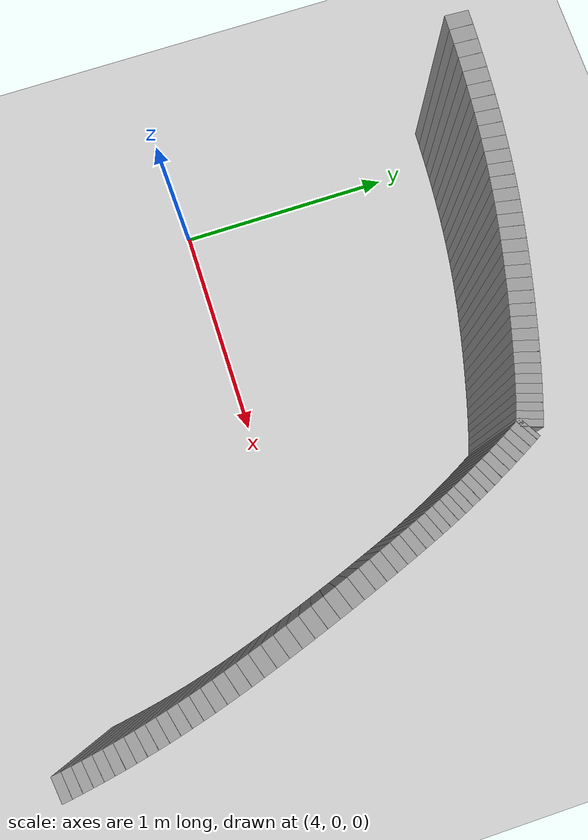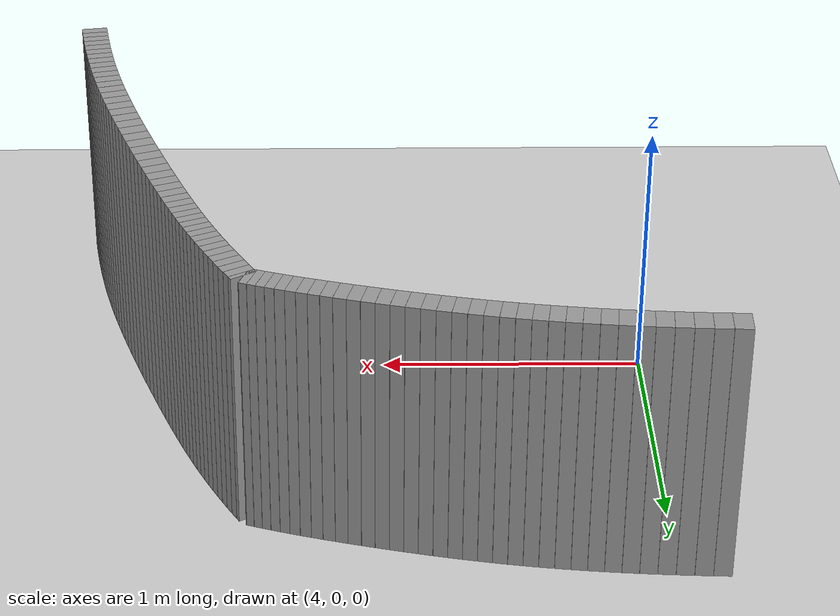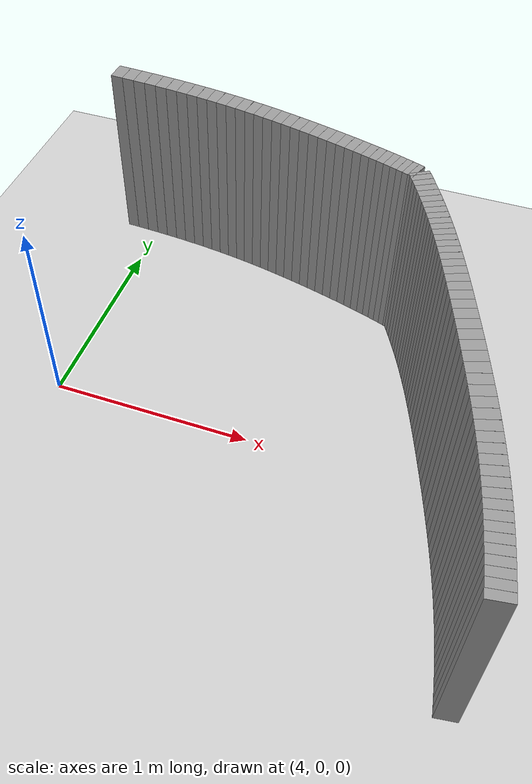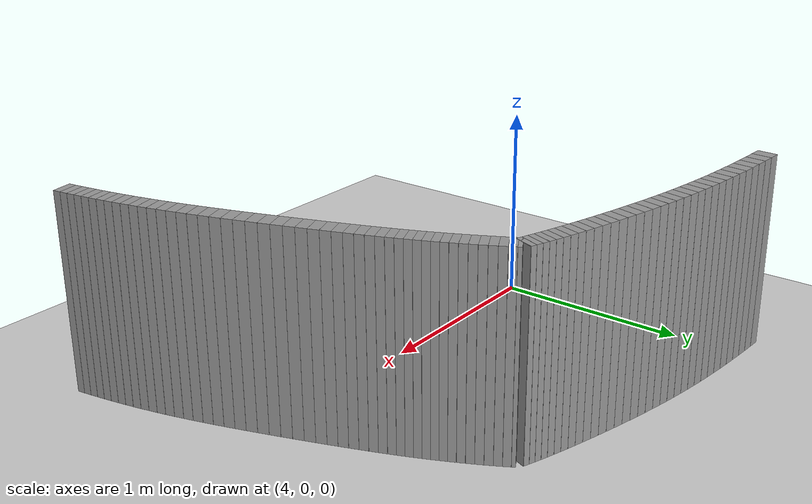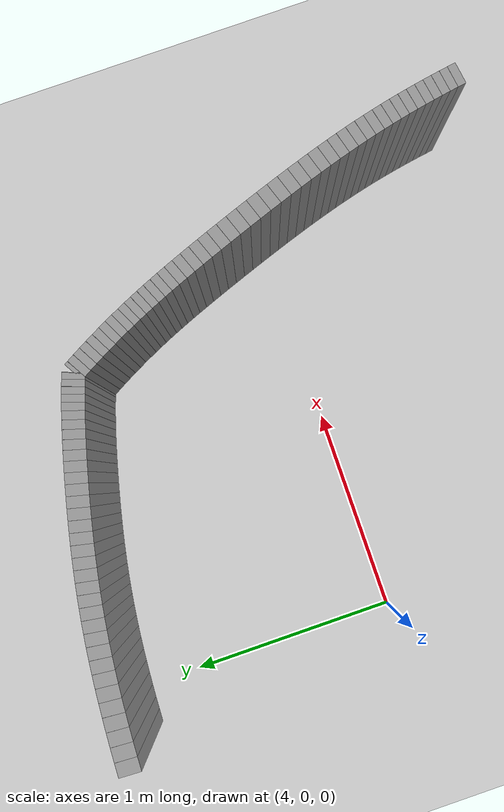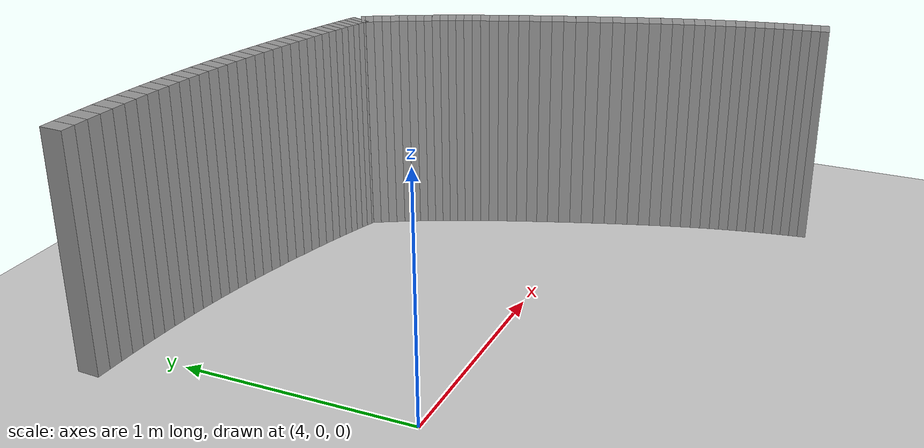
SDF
<sdf version="1.6">
 <world name="default">
  <include><uri>model://ground_plane</uri></include>
  <include><uri>model://sun</uri></include>
  <model name="wall_82_inward">
   <static>true</static>
   <link name="link">
    <collision name="collision">
     <geometry><box><size>0.06471223398595681 0.1 1.0</size></box></geometry>
    </collision>
    <visual name="visual">
     <geometry><box><size>0.06471223398595681 0.1 1.0</size></box></geometry>
     <material>
      <script><uri>file://media/materials/scripts/gazebo.material</uri><name>Gazebo/Gray</name></script>
     </material>
    </visual>
   </link>
   <pose>3.8435890111569018 1.3096067158406095 0.5 0 0 -0.04329537306296156</pose>
  </model>
  <model name="wall_83_inward">
   <static>true</static>
   <link name="link">
    <collision name="collision">
     <geometry><box><size>0.06423628236987404 0.1 1.0</size></box></geometry>
    </collision>
    <visual name="visual">
     <geometry><box><size>0.06423628236987404 0.1 1.0</size></box></geometry>
     <material>
      <script><uri>file://media/materials/scripts/gazebo.material</uri><name>Gazebo/Gray</name></script>
     </material>
    </visual>
   </link>
   <pose>3.90799101475437 1.3065655798519056 0.5 0 0 -0.05110563051473093</pose>
  </model>
  <model name="wall_84_inward">
   <static>true</static>
   <link name="link">
    <collision name="collision">
     <geometry><box><size>0.06356901439767663 0.1 1.0</size></box></geometry>
    </collision>
    <visual name="visual">
     <geometry><box><size>0.06356901439767663 0.1 1.0</size></box></geometry>
     <material>
      <script><uri>file://media/materials/scripts/gazebo.material</uri><name>Gazebo/Gray</name></script>
     </material>
    </visual>
   </link>
   <pose>3.9717956851032876 1.3030382018352242 0.5 0 0 -0.0593932207870481</pose>
  </model>
  <model name="wall_85_inward">
   <static>true</static>
   <link name="link">
    <collision name="collision">
     <geometry><box><size>0.06272149475786218 0.1 1.0</size></box></geometry>
    </collision>
    <visual name="visual">
     <geometry><box><size>0.06272149475786218 0.1 1.0</size></box></geometry>
     <material>
      <script><uri>file://media/materials/scripts/gazebo.material</uri><name>Gazebo/Gray</name></script>
     </material>
    </visual>
   </link>
   <pose>4.034812019815556 1.2990148118926346 0.5 0 0 -0.06818625753567076</pose>
  </model>
  <model name="wall_86_inward">
   <static>true</static>
   <link name="link">
    <collision name="collision">
     <geometry><box><size>0.061715608284078266 0.1 1.0</size></box></geometry>
    </collision>
    <visual name="visual">
     <geometry><box><size>0.061715608284078266 0.1 1.0</size></box></geometry>
     <material>
      <script><uri>file://media/materials/scripts/gazebo.material</uri><name>Gazebo/Gray</name></script>
     </material>
    </visual>
   </link>
   <pose>4.09686507365875 1.2944890272254497 0.5 0 0 -0.07749943858862776</pose>
  </model>
  <model name="wall_87_inward">
   <static>true</static>
   <link name="link">
    <collision name="collision">
     <geometry><box><size>0.060584670376433475 0.1 1.0</size></box></geometry>
    </collision>
    <visual name="visual">
     <geometry><box><size>0.060584670376433475 0.1 1.0</size></box></geometry>
     <material>
      <script><uri>file://media/materials/scripts/gazebo.material</uri><name>Gazebo/Gray</name></script>
     </material>
    </visual>
   </link>
   <pose>4.157807155846089 1.2894579384183973 0.5 0 0 -0.0873283818860518</pose>
  </model>
  <model name="wall_88_inward">
   <static>true</static>
   <link name="link">
    <collision name="collision">
     <geometry><box><size>0.05936654998350407 0.1 1.0</size></box></geometry>
    </collision>
    <visual name="visual">
     <geometry><box><size>0.05936654998350407 0.1 1.0</size></box></geometry>
     <material>
      <script><uri>file://media/materials/scripts/gazebo.material</uri><name>Gazebo/Gray</name></script>
     </material>
    </visual>
   </link>
   <pose>4.217525926595092 1.2839220120129953 0.5 0 0 -0.09764795079599933</pose>
  </model>
  <model name="wall_89_inward">
   <static>true</static>
   <link name="link">
    <collision name="collision">
     <geometry><box><size>0.05810333076261286 0.1 1.0</size></box></geometry>
    </collision>
    <visual name="visual">
     <geometry><box><size>0.05810333076261286 0.1 1.0</size></box></geometry>
     <material>
      <script><uri>file://media/materials/scripts/gazebo.material</uri><name>Gazebo/Gray</name></script>
     </material>
    </visual>
   </link>
   <pose>4.275948900977456 1.2778846827245207 0.5 0 0 -0.10841335548932107</pose>
  </model>
  <model name="wall_90_inward">
   <static>true</static>
   <link name="link">
    <collision name="collision">
     <geometry><box><size>0.056850179290354665 0.1 1.0</size></box></geometry>
    </collision>
    <visual name="visual">
     <geometry><box><size>0.056850179290354665 0.1 1.0</size></box></geometry>
     <material>
      <script><uri>file://media/materials/scripts/gazebo.material</uri><name>Gazebo/Gray</name></script>
     </material>
    </visual>
   </link>
   <pose>4.333052174168271 1.271350850830569 0.5 0 0 -0.11955988316829037</pose>
  </model>
  <model name="wall_91_inward">
   <static>true</static>
   <link name="link">
    <collision name="collision">
     <geometry><box><size>0.05566603626549448 0.1 1.0</size></box></geometry>
    </collision>
    <visual name="visual">
     <geometry><box><size>0.05566603626549448 0.1 1.0</size></box></geometry>
     <material>
      <script><uri>file://media/materials/scripts/gazebo.material</uri><name>Gazebo/Gray</name></script>
     </material>
    </visual>
   </link>
   <pose>4.388868905436205 1.264324914844463 0.5 0 0 -0.13099350203692284</pose>
  </model>
  <model name="wall_92_inward">
   <static>true</static>
   <link name="link">
    <collision name="collision">
     <geometry><box><size>0.054597828302606975 0.1 1.0</size></box></geometry>
    </collision>
    <visual name="visual">
     <geometry><box><size>0.054597828302606975 0.1 1.0</size></box></geometry>
     <material>
      <script><uri>file://media/materials/scripts/gazebo.material</uri><name>Gazebo/Gray</name></script>
     </material>
    </visual>
   </link>
   <pose>4.443485285065224 1.2568096873941195 0.5 0 0 -0.14260206044592766</pose>
  </model>
  <model name="wall_93_inward">
   <static>true</static>
   <link name="link">
    <collision name="collision">
     <geometry><box><size>0.0537020435149088 0.1 1.0</size></box></geometry>
    </collision>
    <visual name="visual">
     <geometry><box><size>0.0537020435149088 0.1 1.0</size></box></geometry>
     <material>
      <script><uri>file://media/materials/scripts/gazebo.material</uri><name>Gazebo/Gray</name></script>
     </material>
    </visual>
   </link>
   <pose>4.497039298998141 1.2488044640521014 0.5 0 0 -0.1542559164059173</pose>
  </model>
  <model name="wall_94_inward">
   <static>true</static>
   <link name="link">
    <collision name="collision">
     <geometry><box><size>0.05299587420199561 0.1 1.0</size></box></geometry>
    </collision>
    <visual name="visual">
     <geometry><box><size>0.05299587420199561 0.1 1.0</size></box></geometry>
     <material>
      <script><uri>file://media/materials/scripts/gazebo.material</uri><name>Gazebo/Gray</name></script>
     </material>
    </visual>
   </link>
   <pose>4.549706051635418 1.2403056557496261 0.5 0 0 -0.1658011074980739</pose>
  </model>
  <model name="wall_95_inward">
   <static>true</static>
   <link name="link">
    <collision name="collision">
     <geometry><box><size>0.052491581682687916 0.1 1.0</size></box></geometry>
    </collision>
    <visual name="visual">
     <geometry><box><size>0.052491581682687916 0.1 1.0</size></box></geometry>
     <material>
      <script><uri>file://media/materials/scripts/gazebo.material</uri><name>Gazebo/Gray</name></script>
     </material>
    </visual>
   </link>
   <pose>4.601675858571324 1.2313083705591783 0.5 0 0 -0.17710500368569437</pose>
  </model>
  <model name="wall_96_inward">
   <static>true</static>
   <link name="link">
    <collision name="collision">
     <geometry><box><size>0.0521771423636001 0.1 1.0</size></box></geometry>
    </collision>
    <visual name="visual">
     <geometry><box><size>0.0521771423636001 0.1 1.0</size></box></geometry>
     <material>
      <script><uri>file://media/materials/scripts/gazebo.material</uri><name>Gazebo/Gray</name></script>
     </material>
    </visual>
   </link>
   <pose>4.653139924519058 1.2218081674072754 0.5 0 0 -0.18801534039692988</pose>
  </model>
  <model name="wall_97_inward">
   <static>true</static>
   <link name="link">
    <collision name="collision">
     <geometry><box><size>0.052001628751243596 0.1 1.0</size></box></geometry>
    </collision>
    <visual name="visual">
     <geometry><box><size>0.052001628751243596 0.1 1.0</size></box></geometry>
     <material>
      <script><uri>file://media/materials/scripts/gazebo.material</uri><name>Gazebo/Gray</name></script>
     </material>
    </visual>
   </link>
   <pose>4.704259365886303 1.2118065036258399 0.5 0 0 -0.19842644665343223</pose>
  </model>
  <model name="wall_98_inward">
   <static>true</static>
   <link name="link">
    <collision name="collision">
     <geometry><box><size>0.05192172878528866 0.1 1.0</size></box></geometry>
    </collision>
    <visual name="visual">
     <geometry><box><size>0.05192172878528866 0.1 1.0</size></box></geometry>
     <material>
      <script><uri>file://media/materials/scripts/gazebo.material</uri><name>Gazebo/Gray</name></script>
     </material>
    </visual>
   </link>
   <pose>4.755149949288046 1.2013136757344938 0.5 0 0 -0.20825041313853612</pose>
  </model>
  <model name="wall_99_inward">
   <static>true</static>
   <link name="link">
    <collision name="collision">
     <geometry><box><size>0.05186386828851805 0.1 1.0</size></box></geometry>
    </collision>
    <visual name="visual">
     <geometry><box><size>0.05186386828851805 0.1 1.0</size></box></geometry>
     <material>
      <script><uri>file://media/materials/scripts/gazebo.material</uri><name>Gazebo/Gray</name></script>
     </material>
    </visual>
   </link>
   <pose>4.8058712376187644 1.1903520773864722 0.5 0 0 -0.21743677329597122</pose>
  </model>
  <model name="wall_100_inward">
   <static>true</static>
   <link name="link">
    <collision name="collision">
     <geometry><box><size>0.051746523880247045 0.1 1.0</size></box></geometry>
    </collision>
    <visual name="visual">
     <geometry><box><size>0.051746523880247045 0.1 1.0</size></box></geometry>
     <material>
      <script><uri>file://media/materials/scripts/gazebo.material</uri><name>Gazebo/Gray</name></script>
     </material>
    </visual>
   </link>
   <pose>4.856407974155774 1.1789605201780262 0.5 0 0 -0.2259849019229948</pose>
  </model>
  <model name="wall_101_inward">
   <static>true</static>
   <link name="link">
    <collision name="collision">
     <geometry><box><size>0.05150065460635097 0.1 1.0</size></box></geometry>
    </collision>
    <visual name="visual">
     <geometry><box><size>0.05150065460635097 0.1 1.0</size></box></geometry>
     <material>
      <script><uri>file://media/materials/scripts/gazebo.material</uri><name>Gazebo/Gray</name></script>
     </material>
    </visual>
   </link>
   <pose>4.906672295751244 1.1671940083849215 0.5 0 0 -0.23393801701689315</pose>
  </model>
  <model name="wall_102_inward">
   <static>true</static>
   <link name="link">
    <collision name="collision">
     <geometry><box><size>0.05104567026343156 0.1 1.0</size></box></geometry>
    </collision>
    <visual name="visual">
     <geometry><box><size>0.05104567026343156 0.1 1.0</size></box></geometry>
     <material>
      <script><uri>file://media/materials/scripts/gazebo.material</uri><name>Gazebo/Gray</name></script>
     </material>
    </visual>
   </link>
   <pose>4.956504126733909 1.1551238208407475 0.5 0 0 -0.24137804134312832</pose>
  </model>
  <model name="wall_103_inward">
   <static>true</static>
   <link name="link">
    <collision name="collision">
     <geometry><box><size>0.05031738560861635 0.1 1.0</size></box></geometry>
    </collision>
    <visual name="visual">
     <geometry><box><size>0.05031738560861635 0.1 1.0</size></box></geometry>
     <material>
      <script><uri>file://media/materials/scripts/gazebo.material</uri><name>Gazebo/Gray</name></script>
     </material>
    </visual>
   </link>
   <pose>5.005673278325599 1.142836438606062 0.5 0 0 -0.2484422317666924</pose>
  </model>
  <model name="wall_104_inward">
   <static>true</static>
   <link name="link">
    <collision name="collision">
     <geometry><box><size>0.04930165541977519 0.1 1.0</size></box></geometry>
    </collision>
    <visual name="visual">
     <geometry><box><size>0.04930165541977519 0.1 1.0</size></box></geometry>
     <material>
      <script><uri>file://media/materials/scripts/gazebo.material</uri><name>Gazebo/Gray</name></script>
     </material>
    </visual>
   </link>
   <pose>5.053911409324757 1.1304250741855484 0.5 0 0 -0.2552903929898682</pose>
  </model>
  <model name="wall_105_inward">
   <static>true</static>
   <link name="link">
    <collision name="collision">
     <geometry><box><size>0.047988786824995154 0.1 1.0</size></box></geometry>
    </collision>
    <visual name="visual">
     <geometry><box><size>0.047988786824995154 0.1 1.0</size></box></geometry>
     <material>
      <script><uri>file://media/materials/scripts/gazebo.material</uri><name>Gazebo/Gray</name></script>
     </material>
    </visual>
   </link>
   <pose>5.1009383184148565 1.1179832080315464 0.5 0 0 -0.26208741830558485</pose>
  </model>
  <model name="wall_106_inward">
   <static>true</static>
   <link name="link">
    <collision name="collision">
     <geometry><box><size>0.046390471827633055 0.1 1.0</size></box></geometry>
    </collision>
    <visual name="visual">
     <geometry><box><size>0.046390471827633055 0.1 1.0</size></box></geometry>
     <material>
      <script><uri>file://media/materials/scripts/gazebo.material</uri><name>Gazebo/Gray</name></script>
     </material>
    </visual>
   </link>
   <pose>5.146474308768206 1.1056014477476666 0.5 0 0 -0.26901512933805277</pose>
  </model>
  <model name="wall_107_inward">
   <static>true</static>
   <link name="link">
    <collision name="collision">
     <geometry><box><size>0.044546774286040855 0.1 1.0</size></box></geometry>
    </collision>
    <visual name="visual">
     <geometry><box><size>0.044546774286040855 0.1 1.0</size></box></geometry>
     <material>
      <script><uri>file://media/materials/scripts/gazebo.material</uri><name>Gazebo/Gray</name></script>
     </material>
    </visual>
   </link>
   <pose>5.190264249632749 1.0933617659971167 0.5 0 0 -0.27623795637730514</pose>
  </model>
  <model name="wall_108_inward">
   <static>true</static>
   <link name="link">
    <collision name="collision">
     <geometry><box><size>0.042526736803538946 0.1 1.0</size></box></geometry>
    </collision>
    <visual name="visual">
     <geometry><box><size>0.042526736803538946 0.1 1.0</size></box></geometry>
     <material>
      <script><uri>file://media/materials/scripts/gazebo.material</uri><name>Gazebo/Gray</name></script>
     </material>
    </visual>
   </link>
   <pose>5.232105374398047 1.081330909631236 0.5 0 0 -0.28390729413300947</pose>
  </model>
  <model name="wall_109_inward">
   <static>true</static>
   <link name="link">
    <collision name="collision">
     <geometry><box><size>0.04040713839305599 0.1 1.0</size></box></geometry>
    </collision>
    <visual name="visual">
     <geometry><box><size>0.04040713839305599 0.1 1.0</size></box></geometry>
     <material>
      <script><uri>file://media/materials/scripts/gazebo.material</uri><name>Gazebo/Gray</name></script>
     </material>
    </visual>
   </link>
   <pose>5.2718651601174935 1.0695564736550704 0.5 0 0 -0.29212500303307126</pose>
  </model>
  <model name="wall_110_inward">
   <static>true</static>
   <link name="link">
    <collision name="collision">
     <geometry><box><size>0.038252891927327136 0.1 1.0</size></box></geometry>
    </collision>
    <visual name="visual">
     <geometry><box><size>0.038252891927327136 0.1 1.0</size></box></geometry>
     <material>
      <script><uri>file://media/materials/scripts/gazebo.material</uri><name>Gazebo/Gray</name></script>
     </material>
    </visual>
   </link>
   <pose>5.309479485921971 1.0580681162985903 0.5 0 0 -0.3009701254592994</pose>
  </model>
  <model name="wall_111_inward">
   <static>true</static>
   <link name="link">
    <collision name="collision">
     <geometry><box><size>0.03613430633529303 0.1 1.0</size></box></geometry>
    </collision>
    <visual name="visual">
     <geometry><box><size>0.03613430633529303 0.1 1.0</size></box></geometry>
     <material>
      <script><uri>file://media/materials/scripts/gazebo.material</uri><name>Gazebo/Gray</name></script>
     </material>
    </visual>
   </link>
   <pose>5.344949493872875 1.046878339716633 0.5 0 0 -0.31048013536058383</pose>
  </model>
  <model name="wall_112_inward">
   <static>true</static>
   <link name="link">
    <collision name="collision">
     <geometry><box><size>0.03409605415487248 0.1 1.0</size></box></geometry>
    </collision>
    <visual name="visual">
     <geometry><box><size>0.03409605415487248 0.1 1.0</size></box></geometry>
     <material>
      <script><uri>file://media/materials/scripts/gazebo.material</uri><name>Gazebo/Gray</name></script>
     </material>
    </visual>
   </link>
   <pose>5.3783318531871736 1.0359851282959232 0.5 0 0 -0.32065945448400957</pose>
  </model>
  <model name="wall_113_inward">
   <static>true</static>
   <link name="link">
    <collision name="collision">
     <geometry><box><size>0.03213884063135571 0.1 1.0</size></box></geometry>
    </collision>
    <visual name="visual">
     <geometry><box><size>0.03213884063135571 0.1 1.0</size></box></geometry>
     <material>
      <script><uri>file://media/materials/scripts/gazebo.material</uri><name>Gazebo/Gray</name></script>
     </material>
    </visual>
   </link>
   <pose>5.409705457213908 1.0253818207445482 0.5 0 0 -0.3314945051191159</pose>
  </model>
  <model name="wall_114_inward">
   <static>true</static>
   <link name="link">
    <collision name="collision">
     <geometry><box><size>0.030224163562767456 0.1 1.0</size></box></geometry>
    </collision>
    <visual name="visual">
     <geometry><box><size>0.030224163562767456 0.1 1.0</size></box></geometry>
     <material>
      <script><uri>file://media/materials/scripts/gazebo.material</uri><name>Gazebo/Gray</name></script>
     </material>
    </visual>
   </link>
   <pose>5.439131925324589 1.0150698362053694 0.5 0 0 -0.3429778189660146</pose>
  </model>
  <model name="wall_115_inward">
   <static>true</static>
   <link name="link">
    <collision name="collision">
     <geometry><box><size>0.028310768931018124 0.1 1.0</size></box></geometry>
    </collision>
    <visual name="visual">
     <geometry><box><size>0.028310768931018124 0.1 1.0</size></box></geometry>
     <material>
      <script><uri>file://media/materials/scripts/gazebo.material</uri><name>Gazebo/Gray</name></script>
     </material>
    </visual>
   </link>
   <pose>5.466635987968397 1.0050658584180885 0.5 0 0 -0.3551217397661598</pose>
  </model>
  <model name="wall_116_inward">
   <static>true</static>
   <link name="link">
    <collision name="collision">
     <geometry><box><size>0.001887040369157009 0.1 1.0</size></box></geometry>
    </collision>
    <visual name="visual">
     <geometry><box><size>0.001887040369157009 0.1 1.0</size></box></geometry>
     <material>
      <script><uri>file://media/materials/scripts/gazebo.material</uri><name>Gazebo/Gray</name></script>
     </material>
    </visual>
   </link>
   <pose>5.480788504359248 0.9998045843081051 0.5 0 0 -0.3679450570012401</pose>
  </model>
  <model name="wall_117_inward">
   <static>true</static>
   <link name="link">
    <collision name="collision">
     <geometry><box><size>0.01825956146845203 0.1 1.0</size></box></geometry>
    </collision>
    <visual name="visual">
     <geometry><box><size>0.01825956146845203 0.1 1.0</size></box></geometry>
     <material>
      <script><uri>file://media/materials/scripts/gazebo.material</uri><name>Gazebo/Gray</name></script>
     </material>
    </visual>
   </link>
   <pose>5.4862829006334 0.9915871527486566 0.5 0 0 -1.0409716616144096</pose>
  </model>
  <model name="wall_118_inward">
   <static>true</static>
   <link name="link">
    <collision name="collision">
     <geometry><box><size>0.036607856219662775 0.1 1.0</size></box></geometry>
    </collision>
    <visual name="visual">
     <geometry><box><size>0.036607856219662775 0.1 1.0</size></box></geometry>
     <material>
      <script><uri>file://media/materials/scripts/gazebo.material</uri><name>Gazebo/Gray</name></script>
     </material>
    </visual>
   </link>
   <pose>5.499949312046419 0.9678003605387167 0.5 0 0 -1.0534682289327368</pose>
  </model>
  <model name="wall_119_inward">
   <static>true</static>
   <link name="link">
    <collision name="collision">
     <geometry><box><size>0.038131954058354185 0.1 1.0</size></box></geometry>
    </collision>
    <visual name="visual">
     <geometry><box><size>0.038131954058354185 0.1 1.0</size></box></geometry>
     <material>
      <script><uri>file://media/materials/scripts/gazebo.material</uri><name>Gazebo/Gray</name></script>
     </material>
    </visual>
   </link>
   <pose>5.518239649805 0.9352131369156267 0.5 0 0 -1.0649755670122487</pose>
  </model>
  <model name="wall_120_inward">
   <static>true</static>
   <link name="link">
    <collision name="collision">
     <geometry><box><size>0.03892889419437502 0.1 1.0</size></box></geometry>
    </collision>
    <visual name="visual">
     <geometry><box><size>0.03892889419437502 0.1 1.0</size></box></geometry>
     <material>
      <script><uri>file://media/materials/scripts/gazebo.material</uri><name>Gazebo/Gray</name></script>
     </material>
    </visual>
   </link>
   <pose>5.536724263055888 0.9014067853530071 0.5 0 0 -1.075771155951137</pose>
  </model>
  <model name="wall_121_inward">
   <static>true</static>
   <link name="link">
    <collision name="collision">
     <geometry><box><size>0.03912524758426257 0.1 1.0</size></box></geometry>
    </collision>
    <visual name="visual">
     <geometry><box><size>0.03912524758426257 0.1 1.0</size></box></geometry>
     <material>
      <script><uri>file://media/materials/scripts/gazebo.material</uri><name>Gazebo/Gray</name></script>
     </material>
    </visual>
   </link>
   <pose>5.555086223587727 0.8669697387270799 0.5 0 0 -1.0860827736305174</pose>
  </model>
  <model name="wall_122_inward">
   <static>true</static>
   <link name="link">
    <collision name="collision">
     <geometry><box><size>0.03883526490349312 0.1 1.0</size></box></geometry>
    </collision>
    <visual name="visual">
     <geometry><box><size>0.03883526490349312 0.1 1.0</size></box></geometry>
     <material>
      <script><uri>file://media/materials/scripts/gazebo.material</uri><name>Gazebo/Gray</name></script>
     </material>
    </visual>
   </link>
   <pose>5.573076663699789 0.8323898847037892 0.5 0 0 -1.0961026921764945</pose>
  </model>
  <model name="wall_123_inward">
   <static>true</static>
   <link name="link">
    <collision name="collision">
     <geometry><box><size>0.038255464622336206 0.1 1.0</size></box></geometry>
    </collision>
    <visual name="visual">
     <geometry><box><size>0.038255464622336206 0.1 1.0</size></box></geometry>
     <material>
      <script><uri>file://media/materials/scripts/gazebo.material</uri><name>Gazebo/Gray</name></script>
     </material>
    </visual>
   </link>
   <pose>5.590525707122511 0.7980207171493109 0.5 0 0 -1.105995596314533</pose>
  </model>
  <model name="wall_124_inward">
   <static>true</static>
   <link name="link">
    <collision name="collision">
     <geometry><box><size>0.03753680309631263 0.1 1.0</size></box></geometry>
    </collision>
    <visual name="visual">
     <geometry><box><size>0.03753680309631263 0.1 1.0</size></box></geometry>
     <material>
      <script><uri>file://media/materials/scripts/gazebo.material</uri><name>Gazebo/Gray</name></script>
     </material>
    </visual>
   </link>
   <pose>5.60734735504394 0.7640631770364417 0.5 0 0 -1.1158118390132998</pose>
  </model>
  <model name="wall_125_inward">
   <static>true</static>
   <link name="link">
    <collision name="collision">
     <geometry><box><size>0.03683078337138176 0.1 1.0</size></box></geometry>
    </collision>
    <visual name="visual">
     <geometry><box><size>0.03683078337138176 0.1 1.0</size></box></geometry>
     <material>
      <script><uri>file://media/materials/scripts/gazebo.material</uri><name>Gazebo/Gray</name></script>
     </material>
    </visual>
   </link>
   <pose>5.623525062642527 0.7305835862391278 0.5 0 0 -1.125621040282319</pose>
  </model>
  <model name="wall_126_inward">
   <static>true</static>
   <link name="link">
    <collision name="collision">
     <geometry><box><size>0.03631734537719221 0.1 1.0</size></box></geometry>
    </collision>
    <visual name="visual">
     <geometry><box><size>0.03631734537719221 0.1 1.0</size></box></geometry>
     <material>
      <script><uri>file://media/materials/scripts/gazebo.material</uri><name>Gazebo/Gray</name></script>
     </material>
    </visual>
   </link>
   <pose>5.639114222360295 0.6974987185256589 0.5 0 0 -1.1353747157254972</pose>
  </model>
  <model name="wall_127_inward">
   <static>true</static>
   <link name="link">
    <collision name="collision">
     <geometry><box><size>0.036081147144893425 0.1 1.0</size></box></geometry>
    </collision>
    <visual name="visual">
     <geometry><box><size>0.036081147144893425 0.1 1.0</size></box></geometry>
     <material>
      <script><uri>file://media/materials/scripts/gazebo.material</uri><name>Gazebo/Gray</name></script>
     </material>
    </visual>
   </link>
   <pose>5.654224827097681 0.6646045756556155 0.5 0 0 -1.1450109696192214</pose>
  </model>
  <model name="wall_128_inward">
   <static>true</static>
   <link name="link">
    <collision name="collision">
     <geometry><box><size>0.03620505483005201 0.1 1.0</size></box></geometry>
    </collision>
    <visual name="visual">
     <geometry><box><size>0.03620505483005201 0.1 1.0</size></box></geometry>
     <material>
      <script><uri>file://media/materials/scripts/gazebo.material</uri><name>Gazebo/Gray</name></script>
     </material>
    </visual>
   </link>
   <pose>5.668997525204414 0.6316187888547091 0.5 0 0 -1.1544357542688535</pose>
  </model>
  <model name="wall_129_inward">
   <static>true</static>
   <link name="link">
    <collision name="collision">
     <geometry><box><size>0.03675347652684037 0.1 1.0</size></box></geometry>
    </collision>
    <visual name="visual">
     <geometry><box><size>0.03675347652684037 0.1 1.0</size></box></geometry>
     <material>
      <script><uri>file://media/materials/scripts/gazebo.material</uri><name>Gazebo/Gray</name></script>
     </material>
    </visual>
   </link>
   <pose>5.683597740584934 0.5981891166808779 0.5 0 0 -1.1635367120212377</pose>
  </model>
  <model name="wall_130_inward">
   <static>true</static>
   <link name="link">
    <collision name="collision">
     <geometry><box><size>0.03772798022517873 0.1 1.0</size></box></geometry>
    </collision>
    <visual name="visual">
     <geometry><box><size>0.03772798022517873 0.1 1.0</size></box></geometry>
     <material>
      <script><uri>file://media/materials/scripts/gazebo.material</uri><name>Gazebo/Gray</name></script>
     </material>
    </visual>
   </link>
   <pose>5.698198644145358 0.5639304012624886 0.5 0 0 -1.1721775986285934</pose>
  </model>
  <model name="wall_131_inward">
   <static>true</static>
   <link name="link">
    <collision name="collision">
     <geometry><box><size>0.03907242667052989 0.1 1.0</size></box></geometry>
    </collision>
    <visual name="visual">
     <geometry><box><size>0.03907242667052989 0.1 1.0</size></box></geometry>
     <material>
      <script><uri>file://media/materials/scripts/gazebo.material</uri><name>Gazebo/Gray</name></script>
     </material>
    </visual>
   </link>
   <pose>5.712957804894042 0.5284801721859058 0.5 0 0 -1.180257148898366</pose>
  </model>
  <model name="wall_132_inward">
   <static>true</static>
   <link name="link">
    <collision name="collision">
     <geometry><box><size>0.04072861773645571 0.1 1.0</size></box></geometry>
    </collision>
    <visual name="visual">
     <geometry><box><size>0.04072861773645571 0.1 1.0</size></box></geometry>
     <material>
      <script><uri>file://media/materials/scripts/gazebo.material</uri><name>Gazebo/Gray</name></script>
     </material>
    </visual>
   </link>
   <pose>5.72800703058049 0.49152681734108417 0.5 0 0 -1.1877008990397615</pose>
  </model>
  <model name="wall_133_inward">
   <static>true</static>
   <link name="link">
    <collision name="collision">
     <geometry><box><size>0.04261008596207297 0.1 1.0</size></box></geometry>
    </collision>
    <visual name="visual">
     <geometry><box><size>0.04261008596207297 0.1 1.0</size></box></geometry>
     <material>
      <script><uri>file://media/materials/scripts/gazebo.material</uri><name>Gazebo/Gray</name></script>
     </material>
    </visual>
   </link>
   <pose>5.743448970061706 0.45282460092275956 0.5 0 0 -1.194462008271367</pose>
  </model>
  <model name="wall_134_inward">
   <static>true</static>
   <link name="link">
    <collision name="collision">
     <geometry><box><size>0.044643609451790016 0.1 1.0</size></box></geometry>
    </collision>
    <visual name="visual">
     <geometry><box><size>0.044643609451790016 0.1 1.0</size></box></geometry>
     <material>
      <script><uri>file://media/materials/scripts/gazebo.material</uri><name>Gazebo/Gray</name></script>
     </material>
    </visual>
   </link>
   <pose>5.759356044390989 0.41220134107810474 0.5 0 0 -1.200543179550631</pose>
  </model>
  <model name="wall_135_inward">
   <static>true</static>
   <link name="link">
    <collision name="collision">
     <geometry><box><size>0.04671136263502805 0.1 1.0</size></box></geometry>
    </collision>
    <visual name="visual">
     <geometry><box><size>0.04671136263502805 0.1 1.0</size></box></geometry>
     <material>
      <script><uri>file://media/materials/scripts/gazebo.material</uri><name>Gazebo/Gray</name></script>
     </material>
    </visual>
   </link>
   <pose>5.775766542918769 0.36957373268087057 0.5 0 0 -1.2059554881961563</pose>
  </model>
  <model name="wall_136_inward">
   <static>true</static>
   <link name="link">
    <collision name="collision">
     <geometry><box><size>0.04870970085630695 0.1 1.0</size></box></geometry>
    </collision>
    <visual name="visual">
     <geometry><box><size>0.04870970085630695 0.1 1.0</size></box></geometry>
     <material>
      <script><uri>file://media/materials/scripts/gazebo.material</uri><name>Gazebo/Gray</name></script>
     </material>
    </visual>
   </link>
   <pose>5.79267940370287 0.3249616643744162 0.5 0 0 -1.210798384388021</pose>
  </model>
  <model name="wall_137_inward">
   <static>true</static>
   <link name="link">
    <collision name="collision">
     <geometry><box><size>0.05057471149182475 0.1 1.0</size></box></geometry>
    </collision>
    <visual name="visual">
     <geometry><box><size>0.05057471149182475 0.1 1.0</size></box></geometry>
     <material>
      <script><uri>file://media/materials/scripts/gazebo.material</uri><name>Gazebo/Gray</name></script>
     </material>
    </visual>
   </link>
   <pose>5.810063605752557 0.2784629931867608 0.5 0 0 -1.2151627184433218</pose>
  </model>
  <model name="wall_138_inward">
   <static>true</static>
   <link name="link">
    <collision name="collision">
     <geometry><box><size>0.05223107259715003 0.1 1.0</size></box></geometry>
    </collision>
    <visual name="visual">
     <geometry><box><size>0.05223107259715003 0.1 1.0</size></box></geometry>
     <material>
      <script><uri>file://media/materials/scripts/gazebo.material</uri><name>Gazebo/Gray</name></script>
     </material>
    </visual>
   </link>
   <pose>5.827862792018243 0.23024022258623217 0.5 0 0 -1.2191831378737663</pose>
  </model>
  <model name="wall_139_inward">
   <static>true</static>
   <link name="link">
    <collision name="collision">
     <geometry><box><size>0.05363226163465903 0.1 1.0</size></box></geometry>
    </collision>
    <visual name="visual">
     <geometry><box><size>0.05363226163465903 0.1 1.0</size></box></geometry>
     <material>
      <script><uri>file://media/materials/scripts/gazebo.material</uri><name>Gazebo/Gray</name></script>
     </material>
    </visual>
   </link>
   <pose>5.845997071169343 0.18051196983884177 0.5 0 0 -1.2229961652989847</pose>
  </model>
  <model name="wall_140_inward">
   <static>true</static>
   <link name="link">
    <collision name="collision">
     <geometry><box><size>0.05470747189498792 0.1 1.0</size></box></geometry>
    </collision>
    <visual name="visual">
     <geometry><box><size>0.05470747189498792 0.1 1.0</size></box></geometry>
     <material>
      <script><uri>file://media/materials/scripts/gazebo.material</uri><name>Gazebo/Gray</name></script>
     </material>
    </visual>
   </link>
   <pose>5.864363250862459 0.12955073378568518 0.5 0 0 -1.226748636823403</pose>
  </model>
  <model name="wall_141_inward">
   <static>true</static>
   <link name="link">
    <collision name="collision">
     <geometry><box><size>0.0554393933147144 0.1 1.0</size></box></geometry>
    </collision>
    <visual name="visual">
     <geometry><box><size>0.0554393933147144 0.1 1.0</size></box></geometry>
     <material>
      <script><uri>file://media/materials/scripts/gazebo.material</uri><name>Gazebo/Gray</name></script>
     </material>
    </visual>
   </link>
   <pose>5.882838597238362 0.07766881761456217 0.5 0 0 -1.2306141280399445</pose>
  </model>
  <model name="wall_142_inward">
   <static>true</static>
   <link name="link">
    <collision name="collision">
     <geometry><box><size>0.05583432482734489 0.1 1.0</size></box></geometry>
    </collision>
    <visual name="visual">
     <geometry><box><size>0.05583432482734489 0.1 1.0</size></box></geometry>
     <material>
      <script><uri>file://media/materials/scripts/gazebo.material</uri><name>Gazebo/Gray</name></script>
     </material>
    </visual>
   </link>
   <pose>5.901294085755163 0.025182229242117382 0.5 0 0 -1.2347241115535914</pose>
  </model>
  <model name="wall_143_inward">
   <static>true</static>
   <link name="link">
    <collision name="collision">
     <geometry><box><size>0.055858334286409884 0.1 1.0</size></box></geometry>
    </collision>
    <visual name="visual">
     <geometry><box><size>0.055858334286409884 0.1 1.0</size></box></geometry>
     <material>
      <script><uri>file://media/materials/scripts/gazebo.material</uri><name>Gazebo/Gray</name></script>
     </material>
    </visual>
   </link>
   <pose>5.919592715578244 -0.027580986707356116 0.5 0 0 -1.239213451160207</pose>
  </model>
  <model name="wall_144_inward">
   <static>true</static>
   <link name="link">
    <collision name="collision">
     <geometry><box><size>0.05552991142641187 0.1 1.0</size></box></geometry>
    </collision>
    <visual name="visual">
     <geometry><box><size>0.05552991142641187 0.1 1.0</size></box></geometry>
     <material>
      <script><uri>file://media/materials/scripts/gazebo.material</uri><name>Gazebo/Gray</name></script>
     </material>
    </visual>
   </link>
   <pose>5.937591839162007 -0.08028627519206367 0.5 0 0 -1.244219951984714</pose>
  </model>
  <model name="wall_145_inward">
   <static>true</static>
   <link name="link">
    <collision name="collision">
     <geometry><box><size>0.05488996912795646 0.1 1.0</size></box></geometry>
    </collision>
    <visual name="visual">
     <geometry><box><size>0.05488996912795646 0.1 1.0</size></box></geometry>
     <material>
      <script><uri>file://media/materials/scripts/gazebo.material</uri><name>Gazebo/Gray</name></script>
     </material>
    </visual>
   </link>
   <pose>5.955157236114106 -0.1326271800133671 0.5 0 0 -1.249834144606788</pose>
  </model>
  <model name="wall_146_inward">
   <static>true</static>
   <link name="link">
    <collision name="collision">
     <geometry><box><size>0.05398145240096698 0.1 1.0</size></box></geometry>
    </collision>
    <visual name="visual">
     <geometry><box><size>0.05398145240096698 0.1 1.0</size></box></geometry>
     <material>
      <script><uri>file://media/materials/scripts/gazebo.material</uri><name>Gazebo/Gray</name></script>
     </material>
    </visual>
   </link>
   <pose>5.972169068244799 -0.18433612286597467 0.5 0 0 -1.2561344001657693</pose>
  </model>
  <model name="wall_147_inward">
   <static>true</static>
   <link name="link">
    <collision name="collision">
     <geometry><box><size>0.05285804590043703 0.1 1.0</size></box></geometry>
    </collision>
    <visual name="visual">
     <geometry><box><size>0.05285804590043703 0.1 1.0</size></box></geometry>
     <material>
      <script><uri>file://media/materials/scripts/gazebo.material</uri><name>Gazebo/Gray</name></script>
     </material>
    </visual>
   </link>
   <pose>5.988525627047558 -0.2351898094971578 0.5 0 0 -1.2631530031410192</pose>
  </model>
  <model name="wall_148_inward">
   <static>true</static>
   <link name="link">
    <collision name="collision">
     <geometry><box><size>0.051574022987799596 0.1 1.0</size></box></geometry>
    </collision>
    <visual name="visual">
     <geometry><box><size>0.051574022987799596 0.1 1.0</size></box></geometry>
     <material>
      <script><uri>file://media/materials/scripts/gazebo.material</uri><name>Gazebo/Gray</name></script>
     </material>
    </visual>
   </link>
   <pose>6.004146568614296 -0.28501409545000655 0.5 0 0 -1.2709061269451702</pose>
  </model>
  <model name="wall_149_inward">
   <static>true</static>
   <link name="link">
    <collision name="collision">
     <geometry><box><size>0.05021639153105326 0.1 1.0</size></box></geometry>
    </collision>
    <visual name="visual">
     <geometry><box><size>0.05021639153105326 0.1 1.0</size></box></geometry>
     <material>
      <script><uri>file://media/materials/scripts/gazebo.material</uri><name>Gazebo/Gray</name></script>
     </material>
    </visual>
   </link>
   <pose>6.018978539045621 -0.33369970328470944 0.5 0 0 -1.2793684101975722</pose>
  </model>
  <model name="wall_150_inward">
   <static>true</static>
   <link name="link">
    <collision name="collision">
     <geometry><box><size>0.04885065805709655 0.1 1.0</size></box></geometry>
    </collision>
    <visual name="visual">
     <geometry><box><size>0.04885065805709655 0.1 1.0</size></box></geometry>
     <material>
      <script><uri>file://media/materials/scripts/gazebo.material</uri><name>Gazebo/Gray</name></script>
     </material>
    </visual>
   </link>
   <pose>6.032997320192369 -0.3812075243341807 0.5 0 0 -1.2884691077373578</pose>
  </model>
  <model name="wall_151_inward">
   <static>true</static>
   <link name="link">
    <collision name="collision">
     <geometry><box><size>0.04752279681903948 0.1 1.0</size></box></geometry>
    </collision>
    <visual name="visual">
     <geometry><box><size>0.04752279681903948 0.1 1.0</size></box></geometry>
     <material>
      <script><uri>file://media/materials/scripts/gazebo.material</uri><name>Gazebo/Gray</name></script>
     </material>
    </visual>
   </link>
   <pose>6.046201161197814 -0.42754935441315567 0.5 0 0 -1.298121143941668</pose>
  </model>
  <model name="wall_152_inward">
   <static>true</static>
   <link name="link">
    <collision name="collision">
     <geometry><box><size>0.04628410689933112 0.1 1.0</size></box></geometry>
    </collision>
    <visual name="visual">
     <geometry><box><size>0.04628410689933112 0.1 1.0</size></box></geometry>
     <material>
      <script><uri>file://media/materials/scripts/gazebo.material</uri><name>Gazebo/Gray</name></script>
     </material>
    </visual>
   </link>
   <pose>6.05860740017906 -0.4727816770145573 0.5 0 0 -1.3082147658529366</pose>
  </model>
  <model name="wall_153_inward">
   <static>true</static>
   <link name="link">
    <collision name="collision">
     <geometry><box><size>0.04517595267028868 0.1 1.0</size></box></geometry>
    </collision>
    <visual name="visual">
     <geometry><box><size>0.04517595267028868 0.1 1.0</size></box></geometry>
     <material>
      <script><uri>file://media/materials/scripts/gazebo.material</uri><name>Gazebo/Gray</name></script>
     </material>
    </visual>
   </link>
   <pose>6.070250502947856 -0.5170040379737029 0.5 0 0 -1.31861798753009</pose>
  </model>
  <model name="wall_154_inward">
   <static>true</static>
   <link name="link">
    <collision name="collision">
     <geometry><box><size>0.04421699781977446 0.1 1.0</size></box></geometry>
    </collision>
    <visual name="visual">
     <geometry><box><size>0.04421699781977446 0.1 1.0</size></box></geometry>
     <material>
      <script><uri>file://media/materials/scripts/gazebo.material</uri><name>Gazebo/Gray</name></script>
     </material>
    </visual>
   </link>
   <pose>6.081176281750951 -0.5603439324691911 0.5 0 0 -1.3291888055597185</pose>
  </model>
  <model name="wall_155_inward">
   <static>true</static>
   <link name="link">
    <collision name="collision">
     <geometry><box><size>0.04339274931242982 0.1 1.0</size></box></geometry>
    </collision>
    <visual name="visual">
     <geometry><box><size>0.04339274931242982 0.1 1.0</size></box></geometry>
     <material>
      <script><uri>file://media/materials/scripts/gazebo.material</uri><name>Gazebo/Gray</name></script>
     </material>
    </visual>
   </link>
   <pose>6.091433702286606 -0.6029302967194043 0.5 0 0 -1.3397845120073388</pose>
  </model>
  <model name="wall_156_inward">
   <static>true</static>
   <link name="link">
    <collision name="collision">
     <geometry><box><size>0.04269540475340384 0.1 1.0</size></box></geometry>
    </collision>
    <visual name="visual">
     <geometry><box><size>0.04269540475340384 0.1 1.0</size></box></geometry>
     <material>
      <script><uri>file://media/materials/scripts/gazebo.material</uri><name>Gazebo/Gray</name></script>
     </material>
    </visual>
   </link>
   <pose>6.101070682078282 -0.6448811024934417 0.5 0 0 -1.350286490400366</pose>
  </model>
  <model name="wall_157_inward">
   <static>true</static>
   <link name="link">
    <collision name="collision">
     <geometry><box><size>0.042112262745404645 0.1 1.0</size></box></geometry>
    </collision>
    <visual name="visual">
     <geometry><box><size>0.042112262745404645 0.1 1.0</size></box></geometry>
     <material>
      <script><uri>file://media/materials/scripts/gazebo.material</uri><name>Gazebo/Gray</name></script>
     </material>
    </visual>
   </link>
   <pose>6.110134037227171 -0.6863044435181151 0.5 0 0 -1.3605693488967647</pose>
  </model>
  <model name="wall_158_inward">
   <static>true</static>
   <link name="link">
    <collision name="collision">
     <geometry><box><size>0.04158641748444286 0.1 1.0</size></box></geometry>
    </collision>
    <visual name="visual">
     <geometry><box><size>0.04158641748444286 0.1 1.0</size></box></geometry>
     <material>
      <script><uri>file://media/materials/scripts/gazebo.material</uri><name>Gazebo/Gray</name></script>
     </material>
    </visual>
   </link>
   <pose>6.1186643477802685 -0.7272746470707514 0.5 0 0 -1.3705360248337446</pose>
  </model>
  <model name="wall_159_inward">
   <static>true</static>
   <link name="link">
    <collision name="collision">
     <geometry><box><size>0.041107856890081555 0.1 1.0</size></box></geometry>
    </collision>
    <visual name="visual">
     <geometry><box><size>0.041107856890081555 0.1 1.0</size></box></geometry>
     <material>
      <script><uri>file://media/materials/scripts/gazebo.material</uri><name>Gazebo/Gray</name></script>
     </material>
    </visual>
   </link>
   <pose>6.126695878560626 -0.7678337512810293 0.5 0 0 -1.3801293602702878</pose>
  </model>
  <model name="wall_160_inward">
   <static>true</static>
   <link name="link">
    <collision name="collision">
     <geometry><box><size>0.04063982819012417 0.1 1.0</size></box></geometry>
    </collision>
    <visual name="visual">
     <geometry><box><size>0.04063982819012417 0.1 1.0</size></box></geometry>
     <material>
      <script><uri>file://media/materials/scripts/gazebo.material</uri><name>Gazebo/Gray</name></script>
     </material>
    </visual>
   </link>
   <pose>6.134259425103179 -0.8080012610506015 0.5 0 0 -1.3892740996679847</pose>
  </model>
  <model name="wall_161_inward">
   <static>true</static>
   <link name="link">
    <collision name="collision">
     <geometry><box><size>0.04014907763462481 0.1 1.0</size></box></geometry>
    </collision>
    <visual name="visual">
     <geometry><box><size>0.04014907763462481 0.1 1.0</size></box></geometry>
     <material>
      <script><uri>file://media/materials/scripts/gazebo.material</uri><name>Gazebo/Gray</name></script>
     </material>
    </visual>
   </link>
   <pose>6.141380040547864 -0.8477627735112037 0.5 0 0 -1.3979619591103378</pose>
  </model>
  <model name="wall_162_inward">
   <static>true</static>
   <link name="link">
    <collision name="collision">
     <geometry><box><size>0.03961795879472024 0.1 1.0</size></box></geometry>
    </collision>
    <visual name="visual">
     <geometry><box><size>0.03961795879472024 0.1 1.0</size></box></geometry>
     <material>
      <script><uri>file://media/materials/scripts/gazebo.material</uri><name>Gazebo/Gray</name></script>
     </material>
    </visual>
   </link>
   <pose>6.14807882905576 -0.887079366692189 0.5 0 0 -1.406165040559021</pose>
  </model>
  <model name="wall_163_inward">
   <static>true</static>
   <link name="link">
    <collision name="collision"><geometry><box><size>0.0390279460599 0.1 1.0</size></box></geometry></collision>
    <visual name="visual">
     <geometry><box><size>0.0390279460599 0.1 1.0</size></box></geometry>
     <material>
      <script><uri>file://media/materials/scripts/gazebo.material</uri><name>Gazebo/Gray</name></script>
     </material>
    </visual>
   </link>
   <pose>6.154374318618597 -0.9258948048596662 0.5 0 0 -1.413905266346106</pose>
  </model>
  <model name="wall_164_inward">
   <static>true</static>
   <link name="link">
    <collision name="collision">
     <geometry><box><size>0.038389292107119714 0.1 1.0</size></box></geometry>
    </collision>
    <visual name="visual">
     <geometry><box><size>0.038389292107119714 0.1 1.0</size></box></geometry>
     <material>
      <script><uri>file://media/materials/scripts/gazebo.material</uri><name>Gazebo/Gray</name></script>
     </material>
    </visual>
   </link>
   <pose>6.160284294333815 -0.9641493406017916 0.5 0 0 -1.4211893647850045</pose>
  </model>
 </world>
</sdf>
